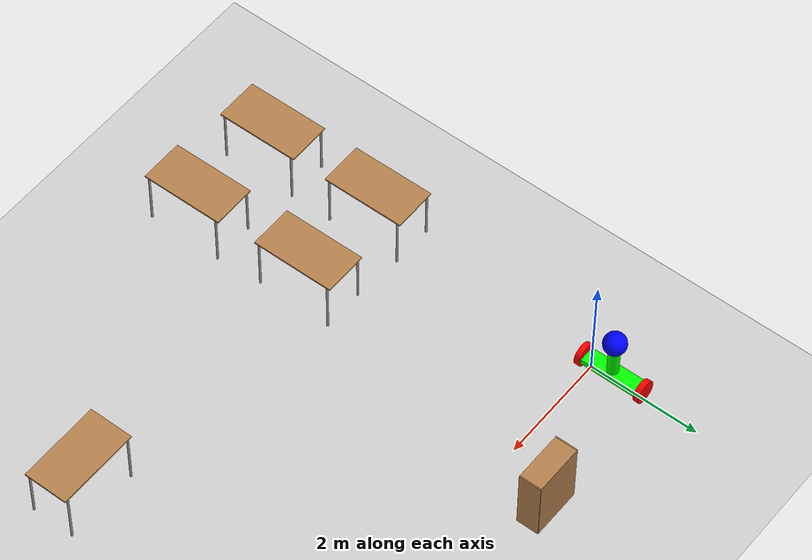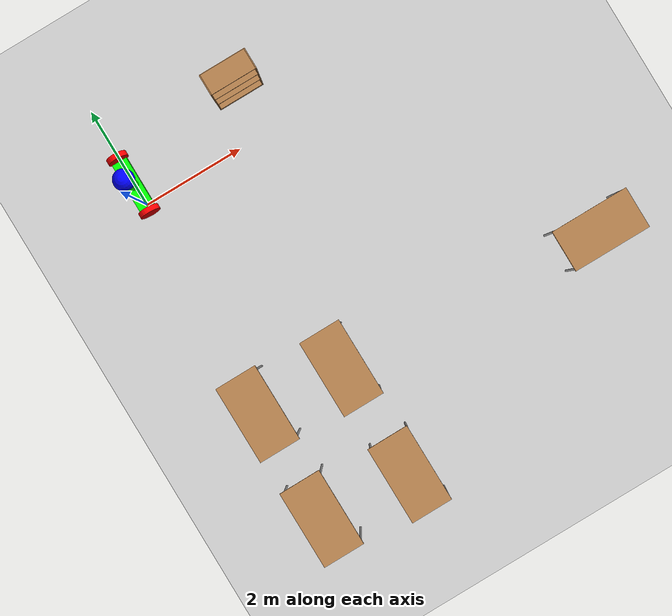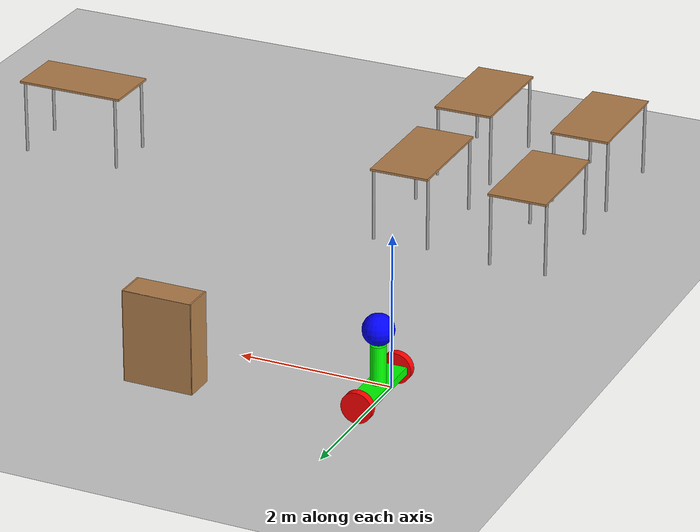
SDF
<sdf version="1.6">
 <world name="default">
  <model name="ground_plane">
   <static>1</static>
   <link name="link">
    <collision name="collision">
     <geometry><plane><normal>0 0 1</normal><size>100 100</size></plane></geometry>
     <surface>
      <contact><collide_bitmask>65535</collide_bitmask></contact>
      <friction><ode><mu>100</mu><mu2>50</mu2></ode></friction>
     </surface>
    </collision>
    <visual name="visual">
     <cast_shadows>0</cast_shadows>
     <geometry><plane><normal>0 0 1</normal><size>100 100</size></plane></geometry>
     <material>
      <script><uri>file://media/materials/scripts/gazebo.material</uri><name>Gazebo/Grey</name></script>
     </material>
    </visual>
   </link>
  </model>
  <model name="table_3_clone_0">
   <static>1</static>
   <link name="link">
    <collision name="surface">
     <pose>0 0 1 0 -0 0</pose>
     <geometry><box><size>1.5 0.8 0.03</size></box></geometry>
     <surface><friction><ode><mu>0.6</mu><mu2>0.6</mu2></ode></friction></surface>
    </collision>
    <visual name="visual1">
     <pose>0 0 1 0 -0 0</pose>
     <geometry><box><size>1.5 0.8 0.03</size></box></geometry>
     <material>
      <script><uri>file://media/materials/scripts/gazebo.material</uri><name>Gazebo/Wood</name></script>
     </material>
    </visual>
    <collision name="front_left_leg">
     <pose>0.68 0.38 0.5 0 -0 0</pose>
     <geometry><cylinder><radius>0.02</radius><length>1</length></cylinder></geometry>
    </collision>
    <visual name="front_left_leg">
     <pose>0.68 0.38 0.5 0 -0 0</pose>
     <geometry><cylinder><radius>0.02</radius><length>1</length></cylinder></geometry>
     <material>
      <script><uri>file://media/materials/scripts/gazebo.material</uri><name>Gazebo/Grey</name></script>
     </material>
    </visual>
    <collision name="front_right_leg">
     <pose>0.68 -0.38 0.5 0 -0 0</pose>
     <geometry><cylinder><radius>0.02</radius><length>1</length></cylinder></geometry>
    </collision>
    <visual name="front_right_leg">
     <pose>0.68 -0.38 0.5 0 -0 0</pose>
     <geometry><cylinder><radius>0.02</radius><length>1</length></cylinder></geometry>
     <material>
      <script><uri>file://media/materials/scripts/gazebo.material</uri><name>Gazebo/Grey</name></script>
     </material>
    </visual>
    <collision name="back_right_leg">
     <pose>-0.68 -0.38 0.5 0 -0 0</pose>
     <geometry><cylinder><radius>0.02</radius><length>1</length></cylinder></geometry>
    </collision>
    <visual name="back_right_leg">
     <pose>-0.68 -0.38 0.5 0 -0 0</pose>
     <geometry><cylinder><radius>0.02</radius><length>1</length></cylinder></geometry>
     <material>
      <script><uri>file://media/materials/scripts/gazebo.material</uri><name>Gazebo/Grey</name></script>
     </material>
    </visual>
    <collision name="back_left_leg">
     <pose>-0.68 0.38 0.5 0 -0 0</pose>
     <geometry><cylinder><radius>0.02</radius><length>1</length></cylinder></geometry>
    </collision>
    <visual name="back_left_leg">
     <pose>-0.68 0.38 0.5 0 -0 0</pose>
     <geometry><cylinder><radius>0.02</radius><length>1</length></cylinder></geometry>
     <material>
      <script><uri>file://media/materials/scripts/gazebo.material</uri><name>Gazebo/Grey</name></script>
     </material>
    </visual>
   </link>
   <pose>-0.106146 -4.31768 0 0 0 -1.56564</pose>
  </model>
  <model name="table_3_clone_1">
   <static>1</static>
   <link name="link">
    <collision name="surface">
     <pose>0 0 1 0 -0 0</pose>
     <geometry><box><size>1.5 0.8 0.03</size></box></geometry>
     <surface><friction><ode><mu>0.6</mu><mu2>0.6</mu2></ode></friction></surface>
    </collision>
    <visual name="visual1">
     <pose>0 0 1 0 -0 0</pose>
     <geometry><box><size>1.5 0.8 0.03</size></box></geometry>
     <material>
      <script><uri>file://media/materials/scripts/gazebo.material</uri><name>Gazebo/Wood</name></script>
     </material>
    </visual>
    <collision name="front_left_leg">
     <pose>0.68 0.38 0.5 0 -0 0</pose>
     <geometry><cylinder><radius>0.02</radius><length>1</length></cylinder></geometry>
    </collision>
    <visual name="front_left_leg">
     <pose>0.68 0.38 0.5 0 -0 0</pose>
     <geometry><cylinder><radius>0.02</radius><length>1</length></cylinder></geometry>
     <material>
      <script><uri>file://media/materials/scripts/gazebo.material</uri><name>Gazebo/Grey</name></script>
     </material>
    </visual>
    <collision name="front_right_leg">
     <pose>0.68 -0.38 0.5 0 -0 0</pose>
     <geometry><cylinder><radius>0.02</radius><length>1</length></cylinder></geometry>
    </collision>
    <visual name="front_right_leg">
     <pose>0.68 -0.38 0.5 0 -0 0</pose>
     <geometry><cylinder><radius>0.02</radius><length>1</length></cylinder></geometry>
     <material>
      <script><uri>file://media/materials/scripts/gazebo.material</uri><name>Gazebo/Grey</name></script>
     </material>
    </visual>
    <collision name="back_right_leg">
     <pose>-0.68 -0.38 0.5 0 -0 0</pose>
     <geometry><cylinder><radius>0.02</radius><length>1</length></cylinder></geometry>
    </collision>
    <visual name="back_right_leg">
     <pose>-0.68 -0.38 0.5 0 -0 0</pose>
     <geometry><cylinder><radius>0.02</radius><length>1</length></cylinder></geometry>
     <material>
      <script><uri>file://media/materials/scripts/gazebo.material</uri><name>Gazebo/Grey</name></script>
     </material>
    </visual>
    <collision name="back_left_leg">
     <pose>-0.68 0.38 0.5 0 -0 0</pose>
     <geometry><cylinder><radius>0.02</radius><length>1</length></cylinder></geometry>
    </collision>
    <visual name="back_left_leg">
     <pose>-0.68 0.38 0.5 0 -0 0</pose>
     <geometry><cylinder><radius>0.02</radius><length>1</length></cylinder></geometry>
     <material>
      <script><uri>file://media/materials/scripts/gazebo.material</uri><name>Gazebo/Grey</name></script>
     </material>
    </visual>
   </link>
   <pose>1.55412 -4.38959 0 0 0 -1.56564</pose>
  </model>
  <model name="table_3_clone_4">
   <static>1</static>
   <link name="link">
    <collision name="surface">
     <pose>0 0 1 0 -0 0</pose>
     <geometry><box><size>1.5 0.8 0.03</size></box></geometry>
     <surface><friction><ode><mu>0.6</mu><mu2>0.6</mu2></ode></friction></surface>
    </collision>
    <visual name="visual1">
     <pose>0 0 1 0 -0 0</pose>
     <geometry><box><size>1.5 0.8 0.03</size></box></geometry>
     <material>
      <script><uri>file://media/materials/scripts/gazebo.material</uri><name>Gazebo/Wood</name></script>
     </material>
    </visual>
    <collision name="front_left_leg">
     <pose>0.68 0.38 0.5 0 -0 0</pose>
     <geometry><cylinder><radius>0.02</radius><length>1</length></cylinder></geometry>
    </collision>
    <visual name="front_left_leg">
     <pose>0.68 0.38 0.5 0 -0 0</pose>
     <geometry><cylinder><radius>0.02</radius><length>1</length></cylinder></geometry>
     <material>
      <script><uri>file://media/materials/scripts/gazebo.material</uri><name>Gazebo/Grey</name></script>
     </material>
    </visual>
    <collision name="front_right_leg">
     <pose>0.68 -0.38 0.5 0 -0 0</pose>
     <geometry><cylinder><radius>0.02</radius><length>1</length></cylinder></geometry>
    </collision>
    <visual name="front_right_leg">
     <pose>0.68 -0.38 0.5 0 -0 0</pose>
     <geometry><cylinder><radius>0.02</radius><length>1</length></cylinder></geometry>
     <material>
      <script><uri>file://media/materials/scripts/gazebo.material</uri><name>Gazebo/Grey</name></script>
     </material>
    </visual>
    <collision name="back_right_leg">
     <pose>-0.68 -0.38 0.5 0 -0 0</pose>
     <geometry><cylinder><radius>0.02</radius><length>1</length></cylinder></geometry>
    </collision>
    <visual name="back_right_leg">
     <pose>-0.68 -0.38 0.5 0 -0 0</pose>
     <geometry><cylinder><radius>0.02</radius><length>1</length></cylinder></geometry>
     <material>
      <script><uri>file://media/materials/scripts/gazebo.material</uri><name>Gazebo/Grey</name></script>
     </material>
    </visual>
    <collision name="back_left_leg">
     <pose>-0.68 0.38 0.5 0 -0 0</pose>
     <geometry><cylinder><radius>0.02</radius><length>1</length></cylinder></geometry>
    </collision>
    <visual name="back_left_leg">
     <pose>-0.68 0.38 0.5 0 -0 0</pose>
     <geometry><cylinder><radius>0.02</radius><length>1</length></cylinder></geometry>
     <material>
      <script><uri>file://media/materials/scripts/gazebo.material</uri><name>Gazebo/Grey</name></script>
     </material>
    </visual>
   </link>
   <pose>-0.09497 -6.45475 0 0 0 -1.56564</pose>
  </model>
  <model name="table_3_clone_5">
   <static>1</static>
   <link name="link">
    <collision name="surface">
     <pose>0 0 1 0 -0 0</pose>
     <geometry><box><size>1.5 0.8 0.03</size></box></geometry>
     <surface><friction><ode><mu>0.6</mu><mu2>0.6</mu2></ode></friction></surface>
    </collision>
    <visual name="visual1">
     <pose>0 0 1 0 -0 0</pose>
     <geometry><box><size>1.5 0.8 0.03</size></box></geometry>
     <material>
      <script><uri>file://media/materials/scripts/gazebo.material</uri><name>Gazebo/Wood</name></script>
     </material>
    </visual>
    <collision name="front_left_leg">
     <pose>0.68 0.38 0.5 0 -0 0</pose>
     <geometry><cylinder><radius>0.02</radius><length>1</length></cylinder></geometry>
    </collision>
    <visual name="front_left_leg">
     <pose>0.68 0.38 0.5 0 -0 0</pose>
     <geometry><cylinder><radius>0.02</radius><length>1</length></cylinder></geometry>
     <material>
      <script><uri>file://media/materials/scripts/gazebo.material</uri><name>Gazebo/Grey</name></script>
     </material>
    </visual>
    <collision name="front_right_leg">
     <pose>0.68 -0.38 0.5 0 -0 0</pose>
     <geometry><cylinder><radius>0.02</radius><length>1</length></cylinder></geometry>
    </collision>
    <visual name="front_right_leg">
     <pose>0.68 -0.38 0.5 0 -0 0</pose>
     <geometry><cylinder><radius>0.02</radius><length>1</length></cylinder></geometry>
     <material>
      <script><uri>file://media/materials/scripts/gazebo.material</uri><name>Gazebo/Grey</name></script>
     </material>
    </visual>
    <collision name="back_right_leg">
     <pose>-0.68 -0.38 0.5 0 -0 0</pose>
     <geometry><cylinder><radius>0.02</radius><length>1</length></cylinder></geometry>
    </collision>
    <visual name="back_right_leg">
     <pose>-0.68 -0.38 0.5 0 -0 0</pose>
     <geometry><cylinder><radius>0.02</radius><length>1</length></cylinder></geometry>
     <material>
      <script><uri>file://media/materials/scripts/gazebo.material</uri><name>Gazebo/Grey</name></script>
     </material>
    </visual>
    <collision name="back_left_leg">
     <pose>-0.68 0.38 0.5 0 -0 0</pose>
     <geometry><cylinder><radius>0.02</radius><length>1</length></cylinder></geometry>
    </collision>
    <visual name="back_left_leg">
     <pose>-0.68 0.38 0.5 0 -0 0</pose>
     <geometry><cylinder><radius>0.02</radius><length>1</length></cylinder></geometry>
     <material>
      <script><uri>file://media/materials/scripts/gazebo.material</uri><name>Gazebo/Grey</name></script>
     </material>
    </visual>
   </link>
   <pose>1.61469 -6.58432 0 0 0 -1.56564</pose>
  </model>
  <model name="RobotModel">
   <link name="link_0">
    <pose>0 0 0.2 0 -0 0</pose>
    <inertial>
     <mass>1</mass>
     <inertia>
      <ixx>0.166667</ixx>
      <ixy>0</ixy>
      <ixz>0</ixz>
      <iyy>0.166667</iyy>
      <iyz>0</iyz>
      <izz>0.166667</izz>
     </inertia>
    </inertial>
    <visual name="visual">
     <geometry><box><size>0.3 1 0.1</size></box></geometry>
     <material>
      <lighting>1</lighting>
      <script><uri>file://media/materials/scripts/gazebo.material</uri><name>Gazebo/Grey</name></script>
      <ambient>0 1 0 1</ambient>
      <diffuse>0.7 0.7 0.7 1</diffuse>
      <specular>0.01 0.01 0.01 1</specular>
      <emissive>0 0 0 1</emissive>
      <shader type="vertex"><normal_map>__default__</normal_map></shader>
     </material>
    </visual>
    <collision name="collision">
     <geometry><box><size>0.3 1 0.1</size></box></geometry>
     <surface>
      <friction>
       <ode><mu>1</mu><mu2>1</mu2><fdir1>0 0 0</fdir1><slip1>0</slip1><slip2>0</slip2></ode>
       <torsional>
        <coefficient>1</coefficient>
        <patch_radius>0</patch_radius>
        <surface_radius>0</surface_radius>
        <use_patch_radius>1</use_patch_radius>
        <ode><slip>0</slip></ode>
       </torsional>
      </friction>
      <bounce><restitution_coefficient>0</restitution_coefficient><threshold>1e+06</threshold></bounce>
      <contact>
       <collide_without_contact>0</collide_without_contact>
       <collide_without_contact_bitmask>1</collide_without_contact_bitmask>
       <collide_bitmask>1</collide_bitmask>
       <ode>
        <soft_cfm>0</soft_cfm>
        <soft_erp>0.2</soft_erp>
        <kp>1e+13</kp>
        <kd>1</kd>
        <max_vel>0.01</max_vel>
        <min_depth>0</min_depth>
       </ode>
       <bullet>
        <split_impulse>1</split_impulse>
        <split_impulse_penetration_threshold>-0.01</split_impulse_penetration_threshold>
        <soft_cfm>0</soft_cfm>
        <soft_erp>0.2</soft_erp>
        <kp>1e+13</kp>
        <kd>1</kd>
       </bullet>
      </contact>
     </surface>
    </collision>
   </link>
   <link name="link_1">
    <pose>0 -0.550023 0.200016 1.5707 -0 0</pose>
    <inertial>
     <mass>1</mass>
     <inertia><ixx>0.145833</ixx><ixy>0</ixy><ixz>0</ixz><iyy>0.145833</iyy><iyz>0</iyz><izz>0.125</izz></inertia>
    </inertial>
    <visual name="visual">
     <geometry><cylinder><radius>0.2</radius><length>0.1</length></cylinder></geometry>
     <material>
      <lighting>1</lighting>
      <script><uri>file://media/materials/scripts/gazebo.material</uri><name>Gazebo/Grey</name></script>
      <ambient>1 0 0 1</ambient>
      <diffuse>0.7 0.7 0.7 1</diffuse>
      <specular>0.01 0.01 0.01 1</specular>
      <emissive>0 0 0 1</emissive>
      <shader type="vertex"><normal_map>__default__</normal_map></shader>
     </material>
    </visual>
    <collision name="collision">
     <geometry><cylinder><radius>0.2</radius><length>0.1</length></cylinder></geometry>
     <surface>
      <friction>
       <ode><mu>1</mu><mu2>1</mu2><fdir1>0 0 0</fdir1><slip1>0</slip1><slip2>0</slip2></ode>
       <torsional>
        <coefficient>1</coefficient>
        <patch_radius>0</patch_radius>
        <surface_radius>0</surface_radius>
        <use_patch_radius>1</use_patch_radius>
        <ode><slip>0</slip></ode>
       </torsional>
      </friction>
      <bounce><restitution_coefficient>0</restitution_coefficient><threshold>1e+06</threshold></bounce>
      <contact>
       <collide_without_contact>0</collide_without_contact>
       <collide_without_contact_bitmask>1</collide_without_contact_bitmask>
       <collide_bitmask>1</collide_bitmask>
       <ode>
        <soft_cfm>0</soft_cfm>
        <soft_erp>0.2</soft_erp>
        <kp>1e+13</kp>
        <kd>1</kd>
        <max_vel>0.01</max_vel>
        <min_depth>0</min_depth>
       </ode>
       <bullet>
        <split_impulse>1</split_impulse>
        <split_impulse_penetration_threshold>-0.01</split_impulse_penetration_threshold>
        <soft_cfm>0</soft_cfm>
        <soft_erp>0.2</soft_erp>
        <kp>1e+13</kp>
        <kd>1</kd>
       </bullet>
      </contact>
     </surface>
    </collision>
   </link>
   <link name="link_1_clone">
    <pose>0 0.580446 0.200008 1.57071 -0 0</pose>
    <inertial>
     <mass>1</mass>
     <inertia><ixx>0.145833</ixx><ixy>0</ixy><ixz>0</ixz><iyy>0.145833</iyy><iyz>0</iyz><izz>0.125</izz></inertia>
    </inertial>
    <visual name="visual">
     <geometry><cylinder><radius>0.2</radius><length>0.1</length></cylinder></geometry>
     <material>
      <lighting>1</lighting>
      <script><uri>file://media/materials/scripts/gazebo.material</uri><name>Gazebo/Grey</name></script>
      <ambient>1 0 0 1</ambient>
      <diffuse>0.7 0.7 0.7 1</diffuse>
      <specular>0.01 0.01 0.01 1</specular>
      <emissive>0 0 0 1</emissive>
      <shader type="vertex"><normal_map>__default__</normal_map></shader>
     </material>
    </visual>
    <collision name="collision">
     <geometry><cylinder><radius>0.2</radius><length>0.1</length></cylinder></geometry>
     <surface>
      <friction>
       <ode><mu>1</mu><mu2>1</mu2><fdir1>0 0 0</fdir1><slip1>0</slip1><slip2>0</slip2></ode>
       <torsional>
        <coefficient>1</coefficient>
        <patch_radius>0</patch_radius>
        <surface_radius>0</surface_radius>
        <use_patch_radius>1</use_patch_radius>
        <ode><slip>0</slip></ode>
       </torsional>
      </friction>
      <bounce><restitution_coefficient>0</restitution_coefficient><threshold>1e+06</threshold></bounce>
      <contact>
       <collide_without_contact>0</collide_without_contact>
       <collide_without_contact_bitmask>1</collide_without_contact_bitmask>
       <collide_bitmask>1</collide_bitmask>
       <ode>
        <soft_cfm>0</soft_cfm>
        <soft_erp>0.2</soft_erp>
        <kp>1e+13</kp>
        <kd>1</kd>
        <max_vel>0.01</max_vel>
        <min_depth>0</min_depth>
       </ode>
       <bullet>
        <split_impulse>1</split_impulse>
        <split_impulse_penetration_threshold>-0.01</split_impulse_penetration_threshold>
        <soft_cfm>0</soft_cfm>
        <soft_erp>0.2</soft_erp>
        <kp>1e+13</kp>
        <kd>1</kd>
       </bullet>
      </contact>
     </surface>
    </collision>
   </link>
   <link name="link_2">
    <pose>0 0 0.5 0 -0 0</pose>
    <inertial>
     <mass>1</mass>
     <inertia><ixx>0.145833</ixx><ixy>0</ixy><ixz>0</ixz><iyy>0.145833</iyy><iyz>0</iyz><izz>0.125</izz></inertia>
    </inertial>
    <visual name="visual">
     <geometry><cylinder><radius>0.1</radius><length>0.5</length></cylinder></geometry>
     <material>
      <lighting>1</lighting>
      <script><uri>file://media/materials/scripts/gazebo.material</uri><name>Gazebo/Grey</name></script>
      <shader type="pixel"><normal_map>__default__</normal_map></shader>
      <ambient>0 1 0 1</ambient>
      <diffuse>0.7 0.7 0.7 1</diffuse>
      <specular>0.01 0.01 0.01 1</specular>
      <emissive>0 0 0 1</emissive>
     </material>
    </visual>
    <collision name="collision">
     <geometry><cylinder><radius>0.1</radius><length>0.5</length></cylinder></geometry>
     <surface>
      <friction>
       <ode><mu>1</mu><mu2>1</mu2><fdir1>0 0 0</fdir1><slip1>0</slip1><slip2>0</slip2></ode>
       <torsional>
        <coefficient>1</coefficient>
        <patch_radius>0</patch_radius>
        <surface_radius>0</surface_radius>
        <use_patch_radius>1</use_patch_radius>
        <ode><slip>0</slip></ode>
       </torsional>
      </friction>
      <bounce><restitution_coefficient>0</restitution_coefficient><threshold>1e+06</threshold></bounce>
      <contact>
       <collide_without_contact>0</collide_without_contact>
       <collide_without_contact_bitmask>1</collide_without_contact_bitmask>
       <collide_bitmask>1</collide_bitmask>
       <ode>
        <soft_cfm>0</soft_cfm>
        <soft_erp>0.2</soft_erp>
        <kp>1e+13</kp>
        <kd>1</kd>
        <max_vel>0.01</max_vel>
        <min_depth>0</min_depth>
       </ode>
       <bullet>
        <split_impulse>1</split_impulse>
        <split_impulse_penetration_threshold>-0.01</split_impulse_penetration_threshold>
        <soft_cfm>0</soft_cfm>
        <soft_erp>0.2</soft_erp>
        <kp>1e+13</kp>
        <kd>1</kd>
       </bullet>
      </contact>
     </surface>
    </collision>
   </link>
   <link name="link_3">
    <pose>0 -0 0.95 0 -0 0</pose>
    <inertial>
     <mass>1</mass>
     <inertia><ixx>0.1</ixx><ixy>0</ixy><ixz>0</ixz><iyy>0.1</iyy><iyz>0</iyz><izz>0.1</izz></inertia>
    </inertial>
    <visual name="visual">
     <geometry><sphere><radius>0.2</radius></sphere></geometry>
     <material>
      <lighting>1</lighting>
      <script><uri>file://media/materials/scripts/gazebo.material</uri><name>Gazebo/Grey</name></script>
      <shader type="pixel"><normal_map>__default__</normal_map></shader>
      <ambient>0 0 1 1</ambient>
      <diffuse>0.7 0.7 0.7 1</diffuse>
      <specular>0.01 0.01 0.01 1</specular>
      <emissive>0 0 0 1</emissive>
     </material>
    </visual>
    <collision name="collision">
     <geometry><sphere><radius>0.2</radius></sphere></geometry>
     <surface>
      <friction>
       <ode><mu>1</mu><mu2>1</mu2><fdir1>0 0 0</fdir1><slip1>0</slip1><slip2>0</slip2></ode>
       <torsional>
        <coefficient>1</coefficient>
        <patch_radius>0</patch_radius>
        <surface_radius>0</surface_radius>
        <use_patch_radius>1</use_patch_radius>
        <ode><slip>0</slip></ode>
       </torsional>
      </friction>
      <bounce><restitution_coefficient>0</restitution_coefficient><threshold>1e+06</threshold></bounce>
      <contact>
       <collide_without_contact>0</collide_without_contact>
       <collide_without_contact_bitmask>1</collide_without_contact_bitmask>
       <collide_bitmask>1</collide_bitmask>
       <ode>
        <soft_cfm>0</soft_cfm>
        <soft_erp>0.2</soft_erp>
        <kp>1e+13</kp>
        <kd>1</kd>
        <max_vel>0.01</max_vel>
        <min_depth>0</min_depth>
       </ode>
       <bullet>
        <split_impulse>1</split_impulse>
        <split_impulse_penetration_threshold>-0.01</split_impulse_penetration_threshold>
        <soft_cfm>0</soft_cfm>
        <soft_erp>0.2</soft_erp>
        <kp>1e+13</kp>
        <kd>1</kd>
       </bullet>
      </contact>
     </surface>
    </collision>
   </link>
   <joint name="link_0_JOINT_0" type="revolute">
    <parent>link_0</parent>
    <child>link_1</child>
    <axis>
     <xyz>0 0 1</xyz>
     <use_parent_model_frame>0</use_parent_model_frame>
     <limit>
      <lower>-1.79769e+308</lower>
      <upper>1.79769e+308</upper>
      <effort>-1</effort>
      <velocity>-1</velocity>
     </limit>
     <dynamics>
      <spring_reference>0</spring_reference>
      <spring_stiffness>0</spring_stiffness>
      <damping>0</damping>
      <friction>0</friction>
     </dynamics>
    </axis>
    <physics>
     <ode><limit><cfm>0</cfm><erp>0.2</erp></limit><suspension><cfm>0</cfm><erp>0.2</erp></suspension></ode>
    </physics>
   </joint>
   <joint name="link_0_JOINT_1" type="revolute">
    <parent>link_0</parent>
    <child>link_1_clone</child>
    <axis>
     <xyz>0 0 1</xyz>
     <use_parent_model_frame>0</use_parent_model_frame>
     <limit>
      <lower>-1.79769e+308</lower>
      <upper>1.79769e+308</upper>
      <effort>-1</effort>
      <velocity>-1</velocity>
     </limit>
     <dynamics>
      <spring_reference>0</spring_reference>
      <spring_stiffness>0</spring_stiffness>
      <damping>0</damping>
     </dynamics>
    </axis>
    <physics>
     <ode><limit><cfm>0</cfm><erp>0.2</erp></limit><suspension><cfm>0</cfm><erp>0.2</erp></suspension></ode>
    </physics>
   </joint>
   <joint name="link_2_JOINT_2" type="revolute">
    <parent>link_0</parent>
    <child>link_2</child>
    <axis>
     <xyz>0 0 1</xyz>
     <use_parent_model_frame>0</use_parent_model_frame>
     <limit>
      <lower>-1.79769e+308</lower>
      <upper>1.79769e+308</upper>
      <effort>-1</effort>
      <velocity>-1</velocity>
     </limit>
     <dynamics>
      <spring_reference>0</spring_reference>
      <spring_stiffness>0</spring_stiffness>
      <damping>0</damping>
     </dynamics>
    </axis>
    <physics>
     <ode><limit><cfm>0</cfm><erp>0.2</erp></limit><suspension><cfm>0</cfm><erp>0.2</erp></suspension></ode>
    </physics>
   </joint>
   <joint name="link_2_JOINT_3" type="revolute">
    <parent>link_2</parent>
    <child>link_3</child>
    <axis>
     <xyz>0 0 1</xyz>
     <use_parent_model_frame>0</use_parent_model_frame>
     <limit>
      <lower>-1.79769e+308</lower>
      <upper>1.79769e+308</upper>
      <effort>-1</effort>
      <velocity>-1</velocity>
     </limit>
     <dynamics>
      <spring_reference>0</spring_reference>
      <spring_stiffness>0</spring_stiffness>
      <damping>0</damping>
     </dynamics>
    </axis>
    <physics>
     <ode><limit><cfm>0</cfm><erp>0.2</erp></limit><suspension><cfm>0</cfm><erp>0.2</erp></suspension></ode>
    </physics>
   </joint>
   <static>0</static>
   <pose>0 0.3896 -8e-06 7e-06 -0 0</pose>
  </model>
  <model name="table_1_clone_1">
   <static>1</static>
   <link name="link">
    <collision name="surface">
     <pose>0 0 1 0 -0 0</pose>
     <geometry><box><size>1.5 0.8 0.03</size></box></geometry>
     <surface><friction><ode><mu>0.6</mu><mu2>0.6</mu2></ode></friction></surface>
    </collision>
    <visual name="visual1">
     <pose>0 0 1 0 -0 0</pose>
     <geometry><box><size>1.5 0.8 0.03</size></box></geometry>
     <material>
      <script><uri>file://media/materials/scripts/gazebo.material</uri><name>Gazebo/Wood</name></script>
     </material>
    </visual>
    <collision name="front_left_leg">
     <pose>0.68 0.38 0.5 0 -0 0</pose>
     <geometry><cylinder><radius>0.02</radius><length>1</length></cylinder></geometry>
    </collision>
    <visual name="front_left_leg">
     <pose>0.68 0.38 0.5 0 -0 0</pose>
     <geometry><cylinder><radius>0.02</radius><length>1</length></cylinder></geometry>
     <material>
      <script><uri>file://media/materials/scripts/gazebo.material</uri><name>Gazebo/Grey</name></script>
     </material>
    </visual>
    <collision name="front_right_leg">
     <pose>0.68 -0.38 0.5 0 -0 0</pose>
     <geometry><cylinder><radius>0.02</radius><length>1</length></cylinder></geometry>
    </collision>
    <visual name="front_right_leg">
     <pose>0.68 -0.38 0.5 0 -0 0</pose>
     <geometry><cylinder><radius>0.02</radius><length>1</length></cylinder></geometry>
     <material>
      <script><uri>file://media/materials/scripts/gazebo.material</uri><name>Gazebo/Grey</name></script>
     </material>
    </visual>
    <collision name="back_right_leg">
     <pose>-0.68 -0.38 0.5 0 -0 0</pose>
     <geometry><cylinder><radius>0.02</radius><length>1</length></cylinder></geometry>
    </collision>
    <visual name="back_right_leg">
     <pose>-0.68 -0.38 0.5 0 -0 0</pose>
     <geometry><cylinder><radius>0.02</radius><length>1</length></cylinder></geometry>
     <material>
      <script><uri>file://media/materials/scripts/gazebo.material</uri><name>Gazebo/Grey</name></script>
     </material>
    </visual>
    <collision name="back_left_leg">
     <pose>-0.68 0.38 0.5 0 -0 0</pose>
     <geometry><cylinder><radius>0.02</radius><length>1</length></cylinder></geometry>
    </collision>
    <visual name="back_left_leg">
     <pose>-0.68 0.38 0.5 0 -0 0</pose>
     <geometry><cylinder><radius>0.02</radius><length>1</length></cylinder></geometry>
     <material>
      <script><uri>file://media/materials/scripts/gazebo.material</uri><name>Gazebo/Grey</name></script>
     </material>
    </visual>
   </link>
   <pose>6.66782 -4.65955 0 0 -0 0</pose>
  </model>
  <model name="bookshelf">
   <static>1</static>
   <link name="link">
    <inertial><mass>1</mass></inertial>
    <collision name="back">
     <pose>0 0.005 0.6 0 -0 0</pose>
     <geometry><box><size>0.9 0.01 1.2</size></box></geometry>
    </collision>
    <visual name="visual1">
     <pose>0 0.005 0.6 0 -0 0</pose>
     <geometry><box><size>0.9 0.01 1.2</size></box></geometry>
     <material>
      <script><uri>file://media/materials/scripts/gazebo.material</uri><name>Gazebo/Wood</name></script>
     </material>
    </visual>
    <collision name="left_side">
     <pose>0.45 -0.195 0.6 0 -0 0</pose>
     <geometry><box><size>0.02 0.4 1.2</size></box></geometry>
    </collision>
    <visual name="visual2">
     <pose>0.45 -0.195 0.6 0 -0 0</pose>
     <geometry><box><size>0.02 0.4 1.2</size></box></geometry>
     <material>
      <script><uri>file://media/materials/scripts/gazebo.material</uri><name>Gazebo/Wood</name></script>
     </material>
    </visual>
    <collision name="right_side">
     <pose>-0.45 -0.195 0.6 0 -0 0</pose>
     <geometry><box><size>0.02 0.4 1.2</size></box></geometry>
    </collision>
    <visual name="visual3">
     <pose>-0.45 -0.195 0.6 0 -0 0</pose>
     <geometry><box><size>0.02 0.4 1.2</size></box></geometry>
     <material>
      <script><uri>file://media/materials/scripts/gazebo.material</uri><name>Gazebo/Wood</name></script>
     </material>
    </visual>
    <collision name="bottom">
     <pose>0 -0.195 0.03 0 -0 0</pose>
     <geometry><box><size>0.88 0.4 0.06</size></box></geometry>
    </collision>
    <visual name="visual4">
     <pose>0 -0.195 0.03 0 -0 0</pose>
     <geometry><box><size>0.88 0.4 0.06</size></box></geometry>
     <material>
      <script><uri>file://media/materials/scripts/gazebo.material</uri><name>Gazebo/Wood</name></script>
     </material>
    </visual>
    <collision name="top">
     <pose>0 -0.195 1.19 0 -0 0</pose>
     <geometry><box><size>0.88 0.4 0.02</size></box></geometry>
    </collision>
    <visual name="visual5">
     <pose>0 -0.195 1.19 0 -0 0</pose>
     <geometry><box><size>0.88 0.4 0.02</size></box></geometry>
     <material>
      <script><uri>file://media/materials/scripts/gazebo.material</uri><name>Gazebo/Wood</name></script>
     </material>
    </visual>
    <collision name="low_shelf">
     <pose>0 -0.195 0.43 0 -0 0</pose>
     <geometry><box><size>0.88 0.4 0.02</size></box></geometry>
    </collision>
    <visual name="visual6">
     <pose>0 -0.195 0.43 0 -0 0</pose>
     <geometry><box><size>0.88 0.4 0.02</size></box></geometry>
     <material>
      <script><uri>file://media/materials/scripts/gazebo.material</uri><name>Gazebo/Wood</name></script>
     </material>
    </visual>
    <collision name="high_shelf">
     <pose>0 -0.195 0.8 0 -0 0</pose>
     <geometry><box><size>0.88 0.4 0.02</size></box></geometry>
    </collision>
    <visual name="visual7">
     <pose>0 -0.195 0.8 0 -0 0</pose>
     <geometry><box><size>0.88 0.4 0.02</size></box></geometry>
     <material>
      <script><uri>file://media/materials/scripts/gazebo.material</uri><name>Gazebo/Wood</name></script>
     </material>
    </visual>
   </link>
   <pose>2.52669 1.18854 0 0 -0 0</pose>
  </model>
 </world>
</sdf>
